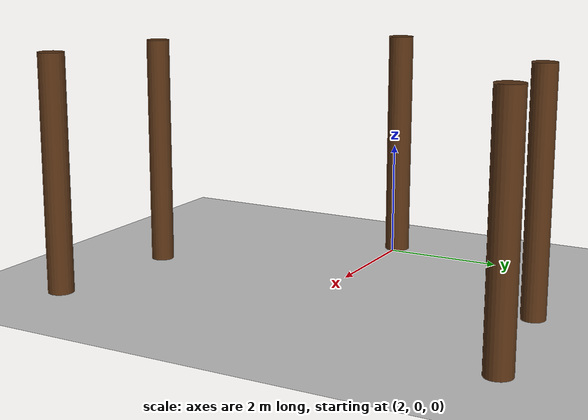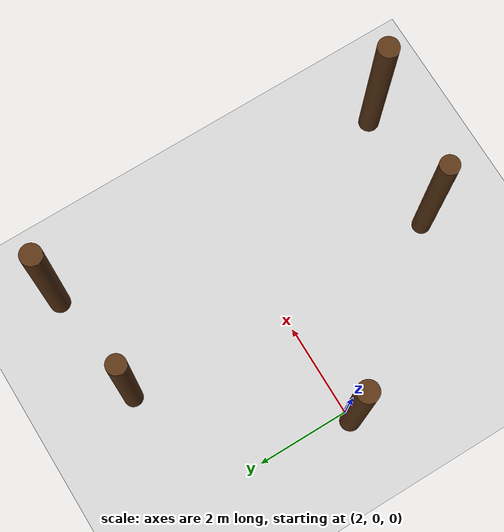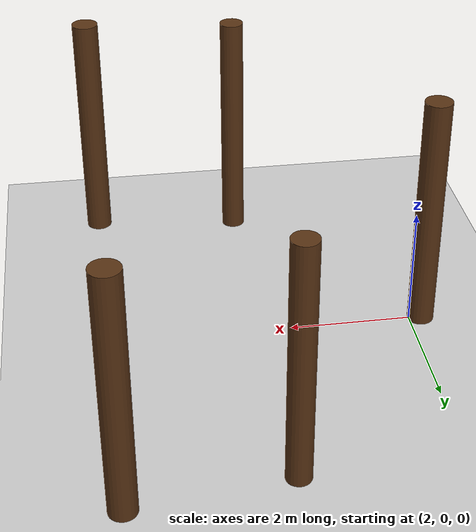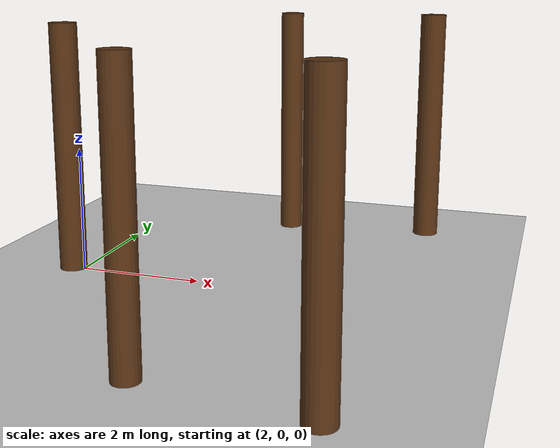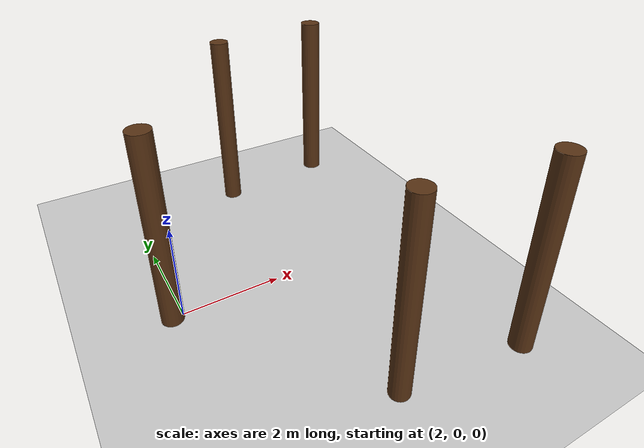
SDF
<?xml version="1.0" ?>
<sdf version="1.6">
  <world name="yopo_sparse_forest_safe">

    <physics name="default_physics" default="0" type="ode">
      <max_step_size>0.001</max_step_size>
      <real_time_factor>1</real_time_factor>
      <real_time_update_rate>1000</real_time_update_rate>
    </physics>

    <include>
      <uri>model://sun</uri>
    </include>

    <include>
      <uri>model://ground_plane</uri>
    </include>

    <!-- 第一阶段主障碍：只测试绕开正前方一根树 -->
    <model name="tree_center">
      <static>true</static>
      <pose>1.8 0.0 2.0 0 0 0</pose>
      <link name="link">
        <collision name="collision">
          <geometry>
            <cylinder>
              <radius>0.22</radius>
              <length>4.0</length>
            </cylinder>
          </geometry>
        </collision>
        <visual name="visual">
          <geometry>
            <cylinder>
              <radius>0.22</radius>
              <length>4.0</length>
            </cylinder>
          </geometry>
          <material>
            <ambient>0.35 0.20 0.08 1</ambient>
            <diffuse>0.35 0.20 0.08 1</diffuse>
          </material>
        </visual>
      </link>
    </model>

    <!-- 左侧柱子移远，先不要卡死绕行路径 -->
    <model name="tree_left_front">
      <static>true</static>
      <pose>4.5 3.5 2.0 0 0 0</pose>
      <link name="link">
        <collision name="collision">
          <geometry>
            <cylinder>
              <radius>0.20</radius>
              <length>4.0</length>
            </cylinder>
          </geometry>
        </collision>
        <visual name="visual">
          <geometry>
            <cylinder>
              <radius>0.20</radius>
              <length>4.0</length>
            </cylinder>
          </geometry>
          <material>
            <ambient>0.35 0.20 0.08 1</ambient>
            <diffuse>0.35 0.20 0.08 1</diffuse>
          </material>
        </visual>
      </link>
    </model>

    <!-- 右侧柱子也移远 -->
    <model name="tree_right_front">
      <static>true</static>
      <pose>4.5 -3.5 2.0 0 0 0</pose>
      <link name="link">
        <collision name="collision">
          <geometry>
            <cylinder>
              <radius>0.20</radius>
              <length>4.0</length>
            </cylinder>
          </geometry>
        </collision>
        <visual name="visual">
          <geometry>
            <cylinder>
              <radius>0.20</radius>
              <length>4.0</length>
            </cylinder>
          </geometry>
          <material>
            <ambient>0.35 0.20 0.08 1</ambient>
            <diffuse>0.35 0.20 0.08 1</diffuse>
          </material>
        </visual>
      </link>
    </model>

    <!-- 远处左右树，先不影响 3m 测试 -->
    <model name="tree_left_far">
      <static>true</static>
      <pose>7.0 3.8 2.0 0 0 0</pose>
      <link name="link">
        <collision name="collision">
          <geometry>
            <cylinder>
              <radius>0.22</radius>
              <length>4.0</length>
            </cylinder>
          </geometry>
        </collision>
        <visual name="visual">
          <geometry>
            <cylinder>
              <radius>0.22</radius>
              <length>4.0</length>
            </cylinder>
          </geometry>
          <material>
            <ambient>0.35 0.20 0.08 1</ambient>
            <diffuse>0.35 0.20 0.08 1</diffuse>
          </material>
        </visual>
      </link>
    </model>

    <model name="tree_right_far">
      <static>true</static>
      <pose>7.0 -3.8 2.0 0 0 0</pose>
      <link name="link">
        <collision name="collision">
          <geometry>
            <cylinder>
              <radius>0.22</radius>
              <length>4.0</length>
            </cylinder>
          </geometry>
        </collision>
        <visual name="visual">
          <geometry>
            <cylinder>
              <radius>0.22</radius>
              <length>4.0</length>
            </cylinder>
          </geometry>
          <material>
            <ambient>0.35 0.20 0.08 1</ambient>
            <diffuse>0.35 0.20 0.08 1</diffuse>
          </material>
        </visual>
      </link>
    </model>

  </world>
</sdf>
